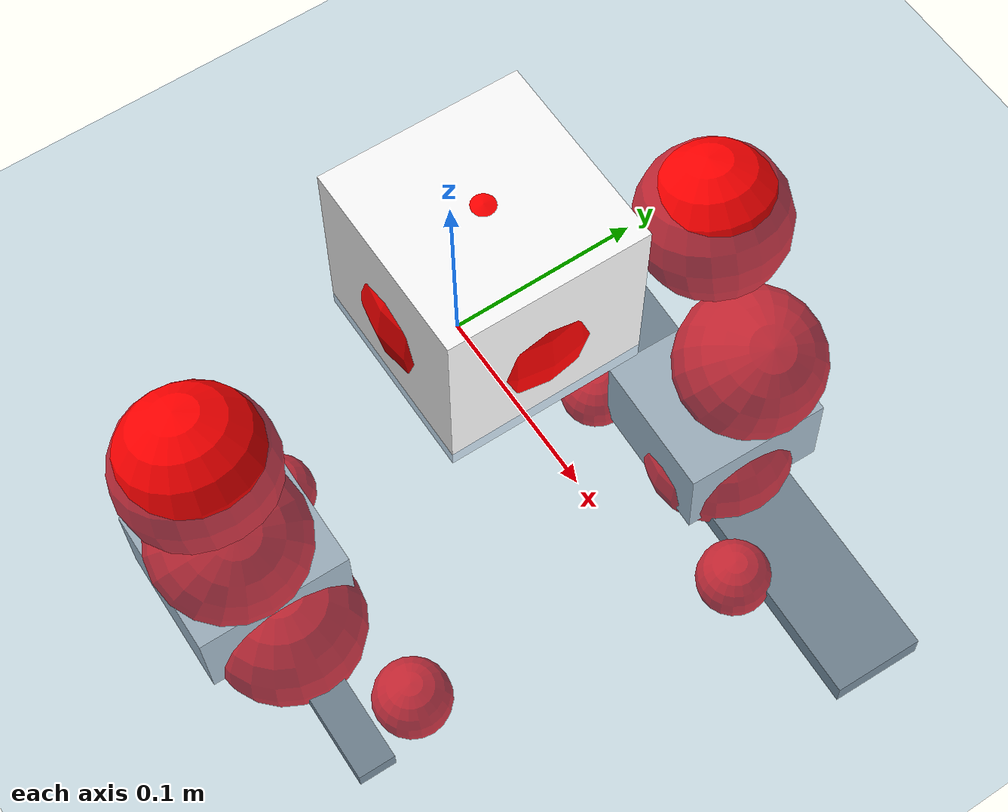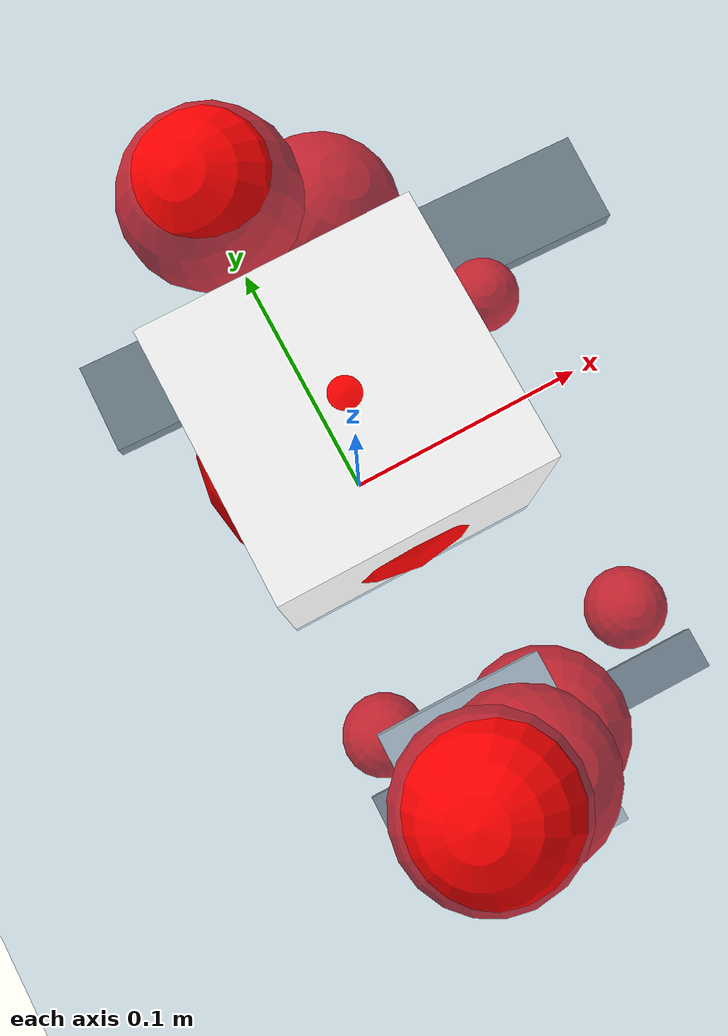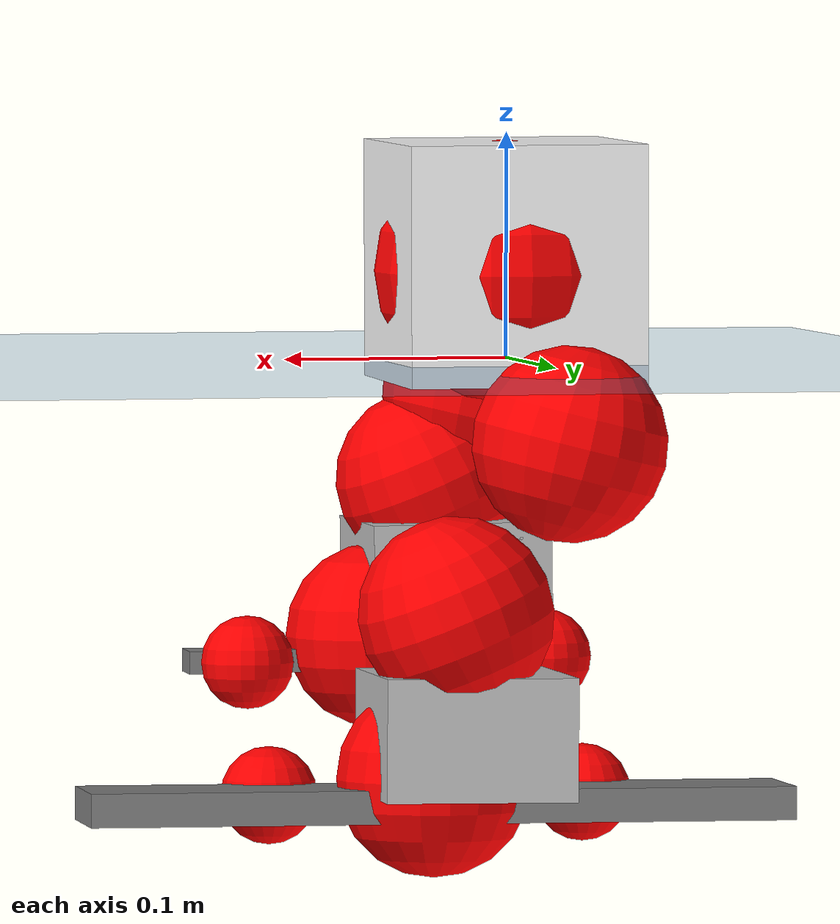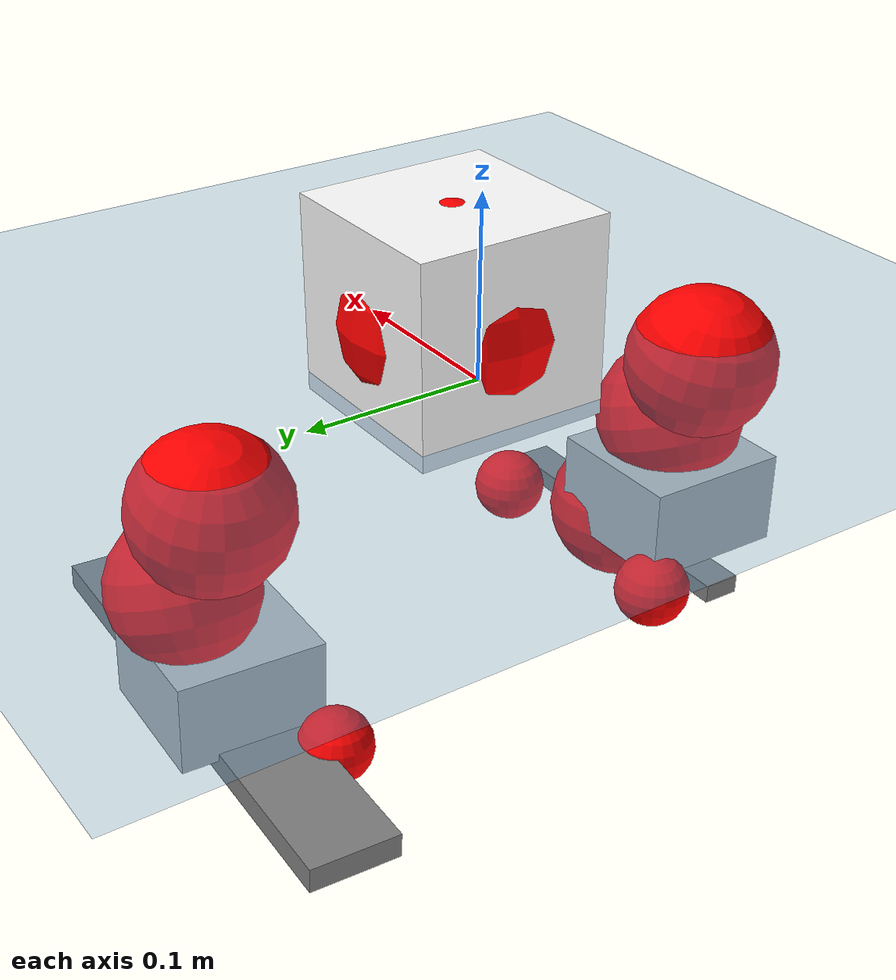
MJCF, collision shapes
<mujoco model="pi_12dof_release_v1">
  <compiler angle="radian" assetdir="assets" balanceinertia="true" inertiafromgeom="false"/>

  <option timestep="0.005" density="1.2" viscosity="2e-05"/>

  <size nkey="1"/>

  <visual>
    <quality shadowsize="8192"/>
    <map shadowclip="0.5"/>
  </visual>

  <default>
    <default class="/">
      <joint armature="0.01" damping="0.01" frictionloss="0.01"/>
      <geom contype="0" conaffinity="0" group="1" solref="-1000 -80"/>
      <site size="0.01 0.005 0.005" group="5"/>
      <general forcelimited="true" biastype="affine" gainprm="20" biasprm="0 -20 -0.5"/>
      <default class="foot">
        <geom size="0.0845 0.036 0.005" type="box" condim="6" group="4" priority="1" friction="0.9 0.2 0.2" solimp="0.015 1 0.005"/>
      </default>
      <default class="reward_collision_sphere">
        <geom group="5" rgba="1 0 0 1"/>
      </default>
    </default>
  </default>

  <asset>
    <texture type="skybox" colorspace="auto" name="//unnamed_texture_0" builtin="gradient" rgb1="0.95 0.95 0.95" rgb2="0.95 0.95 0.95" width="100" height="600"/>
    <texture type="2d" colorspace="auto" name="texplane" builtin="checker" rgb1="0.345 0.575 0.748" rgb2="0.345 0.575 0.748" markrgb="1 1 1" width="512" height="512"/>
    <material name="MatPlane" class="/" texture="texplane" texuniform="true" texrepeat="2 2" specular="0.9"/>
    <mesh name="baselink_1" class="/" file="baselink_1.STL"/>
    <mesh name="r_hip_pitch_link" class="/" file="r_hip_pitch_link.STL"/>
    <mesh name="r_hip_roll_link" class="/" file="r_hip_roll_link.STL"/>
    <mesh name="r_thigh_link" class="/" file="r_thigh_link.STL"/>
    <mesh name="r_calf_link" class="/" file="r_calf_link.STL"/>
    <mesh name="r_ankle_pitch_link" class="/" file="r_ankle_pitch_link.STL"/>
    <mesh name="r_ankle_roll_link" class="/" file="r_ankle_roll_link.STL"/>
    <mesh name="l_hip_pitch_link" class="/" file="l_hip_pitch_link.STL"/>
    <mesh name="l_hip_roll_link" class="/" file="l_hip_roll_link.STL"/>
    <mesh name="l_thigh_link" class="/" file="l_thigh_link.STL"/>
    <mesh name="l_calf_link" class="/" file="l_calf_link.STL"/>
    <mesh name="l_ankle_pitch_link" class="/" file="l_ankle_pitch_link.STL"/>
    <mesh name="l_ankle_roll_link" class="/" file="l_ankle_roll_link.STL"/>
  </asset>

  <worldbody>
    <geom name="floor" class="/" size="100 100 0.125" type="plane" group="0" material="MatPlane"/>
    <light name="toplight_shadow" class="/" pos="0 0 5" dir="0.0990148 0.0990148 -0.990148" type="directional" ambient="0.04 0.04 0.04" diffuse="0.55 0.55 0.55" specular="0.12 0.12 0.12"/>
    <light name="toplight_fill" class="/" pos="0 0 5" dir="0.0990148 0.0990148 -0.990148" type="directional" castshadow="false" ambient="0.04 0.04 0.04" diffuse="0.3 0.3 0.3" specular="0.08 0.08 0.08"/>
    <body name="trunk" pos="0.00346073 0.0135874 0.00905894" quat="0.999977 -0.00611288 0.00259405 -0.00157402">
      <inertial pos="0.0146713 0.0184488 0.00337675" quat="0.735125 0.0256232 0.020864 0.677126" mass="2.55098" diaginertia="0.0162438 0.167799 6.09849e-05"/>
      <joint name="//unnamed_joint_0" type="free"/>
      <geom name="//unnamed_geom_1" class="/" type="mesh" density="0" rgba="1 1 1 1" mesh="baselink_1"/>
      <geom name="//unnamed_geom_2" class="/" size="0.0528385 0.0528385 0.0528385" pos="0 0 0.0344524" type="box" rgba="1 1 1 1"/>
      <geom name="//unnamed_geom_3" class="reward_collision_sphere" size="0.0581224" pos="0 0 0.0301459"/>
      <site name="imu" class="/" pos="0.0283027 -0.0238037 -0.0237014" size="0.0105677"/>
      <camera name="track" class="/" pos="0 -3.44148 0" quat="0.707107 0.707107 0 0" mode="trackcom"/>
      <camera name="ego_camera" class="/" pos="0.0764186 0 0.077518" quat="-0.5 -0.5 0.5 0.5"/>
      <body name="r_hip_pitch_link" pos="-0.00545267 -0.0421574 -0.0195036" quat="0.992069 0.00153383 -0.125678 0.00120747">
        <inertial pos="0.000199691 -0.0793295 -0.00320879" quat="0.0400269 0.690862 -0.106304 0.714008" mass="0.376412" diaginertia="0.000114661 0.0015255 1.17771e-06"/>
        <joint name="r_hip_pitch_joint" class="/" pos="0 0 0" axis="0.000996493 -0.999935 -0.0113985" range="-2.01013 1.00344" armature="0.0135386" damping="0" frictionloss="0.00122732"/>
        <geom name="//unnamed_geom_4" class="/" type="mesh" density="0" rgba="0.75294 0.75294 0.75294 1" mesh="r_hip_pitch_link"/>
        <geom name="//unnamed_geom_5" class="/" size="0.000528385 0.000528385 0.000528385" type="box" rgba="0.75294 0.75294 0.75294 1"/>
        <body name="r_hip_roll_link" pos="-0.0153559 -0.109608 -0.00864774" quat="0.999955 0.00811249 0.00436762 -0.00228955">
          <inertial pos="0.00174448 -0.0185737 -0.0192538" quat="0.696166 -0.0469718 -0.0470797 0.714794" mass="0.375556" diaginertia="0.000426609 0.00310628 1.85584e-06"/>
          <joint name="r_hip_roll_joint" class="/" pos="0 0 0" axis="-0.99831 -0.0448075 -0.0370025" range="-0.0904223 0.460831" armature="0.00179419" damping="0" frictionloss="0.013533"/>
          <geom name="//unnamed_geom_6" class="/" type="mesh" density="0" rgba="0.75294 0.75294 0.75294 1" mesh="r_hip_roll_link"/>
          <geom name="//unnamed_geom_7" class="/" size="0.000528385 0.000528385 0.000528385" type="box" rgba="0.75294 0.75294 0.75294 1"/>
          <geom name="//unnamed_geom_8" class="reward_collision_sphere" size="0.0422708"/>
          <body name="r_thigh_link" pos="-0.00768937 -0.00747809 -0.0267549" quat="0.999997 -0.00164492 -0.00140391 -0.00126469">
            <inertial pos="0.0167635 0.0150838 -0.00506073" quat="0.735016 0.676308 -0.0416018 0.0250543" mass="0.136412" diaginertia="0.000156472 0.00129833 1.06914e-06"/>
            <joint name="r_thigh_joint" class="/" pos="0 0 0" axis="0.0102308 0.0802626 -0.996721" stiffness="0.0894012" range="0.0658355 0.963321" armature="0.00143976" damping="0.100787" frictionloss="0.000990123"/>
            <geom name="//unnamed_geom_9" class="/" type="mesh" density="0" rgba="0.75294 0.75294 0.75294 1" mesh="r_thigh_link"/>
            <geom name="//unnamed_geom_10" class="/" size="0.000528385 0.000528385 0.000528385" type="box" rgba="0.75294 0.75294 0.75294 1"/>
            <body name="r_calf_link" pos="0.0188676 0.00634056 -0.0186082" quat="0.947251 0.00078071 0.320473 -0.00358776">
              <inertial pos="0.00614291 -0.0121832 -0.0192812" quat="0.995958 -0.0189798 -0.0426034 0.0767574" mass="1.03151" diaginertia="0.00434239 0.0527405 2.1722e-06"/>
              <joint name="r_calf_joint" class="/" pos="0 0 0" axis="0.096201 -0.995335 -0.00738763" stiffness="0.0297702" range="-1.41276 0.78727" armature="0.00897882" damping="0.0510923" frictionloss="0.00143942"/>
              <geom name="//unnamed_geom_11" class="/" type="mesh" density="0" rgba="0.75294 0.75294 0.75294 1" mesh="r_calf_link"/>
              <geom name="//unnamed_geom_12" class="/" size="0.000528385 0.000528385 0.000528385" type="box" rgba="0.75294 0.75294 0.75294 1"/>
              <geom name="//unnamed_geom_13" class="reward_collision_sphere" size="0.0422708"/>
              <body name="r_ankle_pitch_link" pos="0.0103707 0.00387951 -0.0435841" quat="0.980147 -3.09296e-05 -0.198274 -0.000148577">
                <inertial pos="-0.00676518 0.019234 -0.0174913" quat="0.0461091 0.710655 -0.0216523 0.701694" mass="0.189406" diaginertia="0.000405099 0.00344527 1.82862e-06"/>
                <joint name="r_ankle_pitch_joint" class="/" pos="0 0 0" axis="-0.0341096 -0.999228 0.0194959" stiffness="0.0169932" range="-1.02398 0.851001" armature="0.00287526" damping="0" frictionloss="0.00169216"/>
                <geom name="//unnamed_geom_14" class="/" type="mesh" density="0" rgba="0.75294 0.75294 0.75294 1" mesh="r_ankle_pitch_link"/>
                <geom name="//unnamed_geom_15" class="/" size="0.0412141 0.0422708 0.0264193" type="box" rgba="0.75294 0.75294 0.75294 1"/>
                <body name="r_ankle_roll_link" pos="0.0842585 0.00466026 -0.0169166" quat="0.999993 -2.08096e-05 -0.00282241 -0.00257503">
                  <inertial pos="-0.0112682 -0.0130884 -0.0112235" quat="0.5691 0.452695 0.452726 0.515977" mass="0.464073" diaginertia="0.00106935 0.00979154 3.71716e-06"/>
                  <joint name="r_ankle_roll_joint" class="/" pos="0 0 0" axis="-0.995024 0.0326322 -0.0941445" range="-0.531906 -0.155516" armature="0.0136438" damping="0" frictionloss="0.00573823"/>
                  <geom name="//unnamed_geom_16" class="/" type="mesh" density="0" rgba="0.75294 0.75294 0.75294 1" mesh="r_ankle_roll_link"/>
                  <geom name="//unnamed_geom_17" class="/" type="mesh" rgba="0.75294 0.75294 0.75294 1" mesh="r_ankle_roll_link"/>
                  <geom name="right_foot" class="foot" size="0.0898065 0.0104652 0.0052329" pos="-0.0519646 0 -0.0189488"/>
                  <geom name="//unnamed_geom_19" class="reward_collision_sphere" size="0.0422708" pos="-0.0509457 0 -0.00861311"/>
                  <geom name="//unnamed_geom_20" class="reward_collision_sphere" size="0.0211354" pos="0.0152837 0.0344148 -0.0172262"/>
                  <geom name="//unnamed_geom_21" class="reward_collision_sphere" size="0.0211354" pos="-0.12227 0.0344148 -0.0172262"/>
                  <site name="right_foot" class="foot" pos="-0.0519646 0 -0.0189488" size="0.0105677"/>
                </body>
              </body>
            </body>
          </body>
        </body>
      </body>
      <body name="l_hip_pitch_link" pos="-0.000514993 0.0286065 -0.0289038" quat="0.992278 -0.00154169 -0.124015 0.00124274">
        <inertial pos="-0.00645148 0.101295 -0.0129685" quat="-0.0760887 0.708227 0.0402931 0.700715" mass="0.642744" diaginertia="0.000173371 0.00204313 1.42188e-06"/>
        <joint name="l_hip_pitch_joint" class="/" pos="0 0 0" axis="-0.0447452 0.998869 -0.0160973" range="-1.36179 1.42487" armature="0.0139213" damping="0" frictionloss="0.0121764"/>
        <geom name="//unnamed_geom_22" class="/" type="mesh" density="0" rgba="0.75294 0.75294 0.75294 1" mesh="l_hip_pitch_link"/>
        <geom name="//unnamed_geom_23" class="/" size="0.000528385 0.000528385 0.000528385" type="box" rgba="0.75294 0.75294 0.75294 1"/>
        <body name="l_hip_roll_link" pos="0.000242597 0.109142 -0.00819974" quat="0.999961 0.000447066 -0.00289188 -0.00831891">
          <inertial pos="-0.00626611 -0.0193093 -0.0356924" quat="0.70275 -0.0309974 -0.136811 0.69747" mass="0.575113" diaginertia="0.000429296 0.003609 1.53403e-06"/>
          <joint name="l_hip_roll_joint" class="/" pos="0 0 0" axis="-0.997564 0.0384831 0.0581758" range="-0.42038 -0.0717086" armature="0.000376821" damping="0" frictionloss="0.0170234"/>
          <geom name="//unnamed_geom_24" class="/" type="mesh" density="0" rgba="0.75294 0.75294 0.75294 1" mesh="l_hip_roll_link"/>
          <geom name="//unnamed_geom_25" class="/" size="0.000528385 0.000528385 0.000528385" type="box" rgba="0.75294 0.75294 0.75294 1"/>
          <geom name="//unnamed_geom_26" class="reward_collision_sphere" size="0.0422708"/>
          <body name="l_thigh_link" pos="0.0107509 0.00102518 -0.043861" quat="0.999982 0.00421218 -0.000394584 -0.00422057">
            <inertial pos="-0.00315245 -0.0177561 -0.0151551" quat="0.679357 0.733412 -0.0198265 -0.0136904" mass="0.135368" diaginertia="0.000147861 0.00154253 9.32675e-07"/>
            <joint name="l_thigh_joint" class="/" pos="0 0 0" axis="0.0204329 0.0054025 -0.999777" range="-0.788528 0.130662" armature="0.0175757" damping="0.093583" frictionloss="0.00564765"/>
            <geom name="//unnamed_geom_27" class="/" type="mesh" density="0" rgba="0.75294 0.75294 0.75294 1" mesh="l_thigh_link"/>
            <geom name="//unnamed_geom_28" class="/" size="0.000528385 0.000528385 0.000528385" type="box" rgba="0.75294 0.75294 0.75294 1"/>
            <body name="l_calf_link" pos="0.0185987 -0.00393455 -0.0384442" quat="0.947918 0.00837712 0.318365 -0.00491976">
              <inertial pos="-0.00451172 0.0156631 -0.0238673" quat="0.999825 -0.0017941 -0.0111496 0.0149411" mass="1.1215" diaginertia="0.00436262 0.0535844 2.2294e-06"/>
              <joint name="l_calf_joint" class="/" pos="0 0 0" axis="-0.0601302 0.998127 0.0112247" stiffness="0.09675" range="-0.971827 1.84276" armature="0.01576" damping="0" frictionloss="0.00598452"/>
              <geom name="//unnamed_geom_29" class="/" type="mesh" density="0" rgba="0.75294 0.75294 0.75294 1" mesh="l_calf_link"/>
              <geom name="//unnamed_geom_30" class="/" size="0.000528385 0.000528385 0.000528385" type="box" rgba="0.75294 0.75294 0.75294 1"/>
              <geom name="//unnamed_geom_31" class="reward_collision_sphere" size="0.0422708"/>
              <body name="l_ankle_pitch_link" pos="0.0138799 -0.0150216 -0.0509481" quat="0.979426 0.00399636 -0.201762 -0.00085858">
                <inertial pos="0.0020169 0.0133558 0.0052854" quat="-0.0109136 0.716881 -0.0261982 0.696617" mass="0.166307" diaginertia="0.000326825 0.00334847 1.86854e-06"/>
                <joint name="l_ankle_pitch_joint" class="/" pos="0 0 0" axis="0.0254676 0.99966 -0.00552794" range="-0.379462 1.38521" armature="0.0186778" damping="0" frictionloss="0.0174266"/>
                <geom name="//unnamed_geom_32" class="/" type="mesh" density="0" rgba="0.75294 0.75294 0.75294 1" mesh="l_ankle_pitch_link"/>
                <geom name="//unnamed_geom_33" class="/" size="0.0412141 0.0422708 0.0264193" type="box" rgba="0.75294 0.75294 0.75294 1"/>
                <body name="l_ankle_roll_link" pos="0.0641863 -0.00430033 -0.010724" quat="0.999996 0.00223976 0.00138432 0.000964878">
                  <inertial pos="-0.0118767 -0.00599686 -0.00448262" quat="0.565661 0.426864 0.428831 0.560284" mass="0.496452" diaginertia="0.00108155 0.0130331 4.38415e-06"/>
                  <joint name="l_ankle_roll_joint" class="/" pos="0 0 0" axis="-0.999623 -0.0215758 -0.0169817" range="-0.522764 0.0935713" armature="0.0137215" damping="0.102824" frictionloss="0.0157602"/>
                  <geom name="//unnamed_geom_34" class="/" type="mesh" density="0" rgba="0.75294 0.75294 0.75294 1" mesh="l_ankle_roll_link"/>
                  <geom name="//unnamed_geom_35" class="/" type="mesh" rgba="0.75294 0.75294 0.75294 1" mesh="l_ankle_roll_link"/>
                  <geom name="left_foot" class="foot" size="0.152466 0.0258012 0.00725117" pos="-0.0519646 0 -0.0189488"/>
                  <geom name="//unnamed_geom_37" class="reward_collision_sphere" size="0.0422708" pos="-0.0509457 0 -0.00861311"/>
                  <geom name="//unnamed_geom_38" class="reward_collision_sphere" size="0.0211354" pos="0.0152837 -0.0344148 -0.0172262"/>
                  <geom name="//unnamed_geom_39" class="reward_collision_sphere" size="0.0211354" pos="-0.12227 -0.0344148 -0.0172262"/>
                  <site name="left_foot" class="foot" pos="-0.0519646 0 -0.0189488" size="0.0105677"/>
                </body>
              </body>
            </body>
          </body>
        </body>
      </body>
    </body>
  </worldbody>

  <contact>
    <pair class="/" geom1="floor" geom2="right_foot" name="//unnamed_contact_1"/>
    <pair class="/" geom1="floor" geom2="left_foot" name="//unnamed_contact_0"/>
  </contact>

  <actuator>
    <general name="r_hip_pitch_joint" class="/" joint="r_hip_pitch_joint" forcerange="-30.8734 30.8734" gainprm="27.0233" biasprm="0 -27.0233 -0.411004"/>
    <general name="r_hip_roll_joint" class="/" joint="r_hip_roll_joint" forcerange="-6.42967 6.42967" gainprm="27.0233" biasprm="0 -27.0233 -0.411004"/>
    <general name="r_thigh_joint" class="/" joint="r_thigh_joint" forcerange="-20.4217 20.4217" gainprm="27.0233" biasprm="0 -27.0233 -0.411004"/>
    <general name="r_calf_joint" class="/" joint="r_calf_joint" forcerange="-17.9264 17.9264" gainprm="27.0233" biasprm="0 -27.0233 -0.411004"/>
    <general name="r_ankle_pitch_joint" class="/" joint="r_ankle_pitch_joint" forcerange="-21.429 21.429" gainprm="27.0233" biasprm="0 -27.0233 -0.411004"/>
    <general name="r_ankle_roll_joint" class="/" joint="r_ankle_roll_joint" forcerange="-9.79632 9.79632" gainprm="27.0233" biasprm="0 -27.0233 -0.411004"/>
    <general name="l_hip_pitch_joint" class="/" joint="l_hip_pitch_joint" forcerange="-12.9549 12.9549" gainprm="27.0233" biasprm="0 -27.0233 -0.411004"/>
    <general name="l_hip_roll_joint" class="/" joint="l_hip_roll_joint" forcerange="-24.2578 24.2578" gainprm="27.0233" biasprm="0 -27.0233 -0.411004"/>
    <general name="l_thigh_joint" class="/" joint="l_thigh_joint" forcerange="-18.4562 18.4562" gainprm="27.0233" biasprm="0 -27.0233 -0.411004"/>
    <general name="l_calf_joint" class="/" joint="l_calf_joint" forcerange="-31.9009 31.9009" gainprm="27.0233" biasprm="0 -27.0233 -0.411004"/>
    <general name="l_ankle_pitch_joint" class="/" joint="l_ankle_pitch_joint" forcerange="-25.692 25.692" gainprm="27.0233" biasprm="0 -27.0233 -0.411004"/>
    <general name="l_ankle_roll_joint" class="/" joint="l_ankle_roll_joint" forcerange="-34.2181 34.2181" gainprm="27.0233" biasprm="0 -27.0233 -0.411004"/>
  </actuator>

  <sensor>
    <gyro site="imu" name="imu_angular_velocity"/>
    <velocimeter site="imu" name="imu_linear_velocity"/>
    <framelinvel objtype="site" objname="left_foot" name="left_foot_global_linear_velocity"/>
    <framelinvel objtype="site" objname="right_foot" name="right_foot_global_linear_velocity"/>
  </sensor>

  <keyframe>
    <key name="home" qpos="0 0 0.291 1 0 0 0 0.4 0 0 -0.8 0.4 0 -0.4 0 0 0.8 -0.4 0"/>
  </keyframe>
</mujoco>
